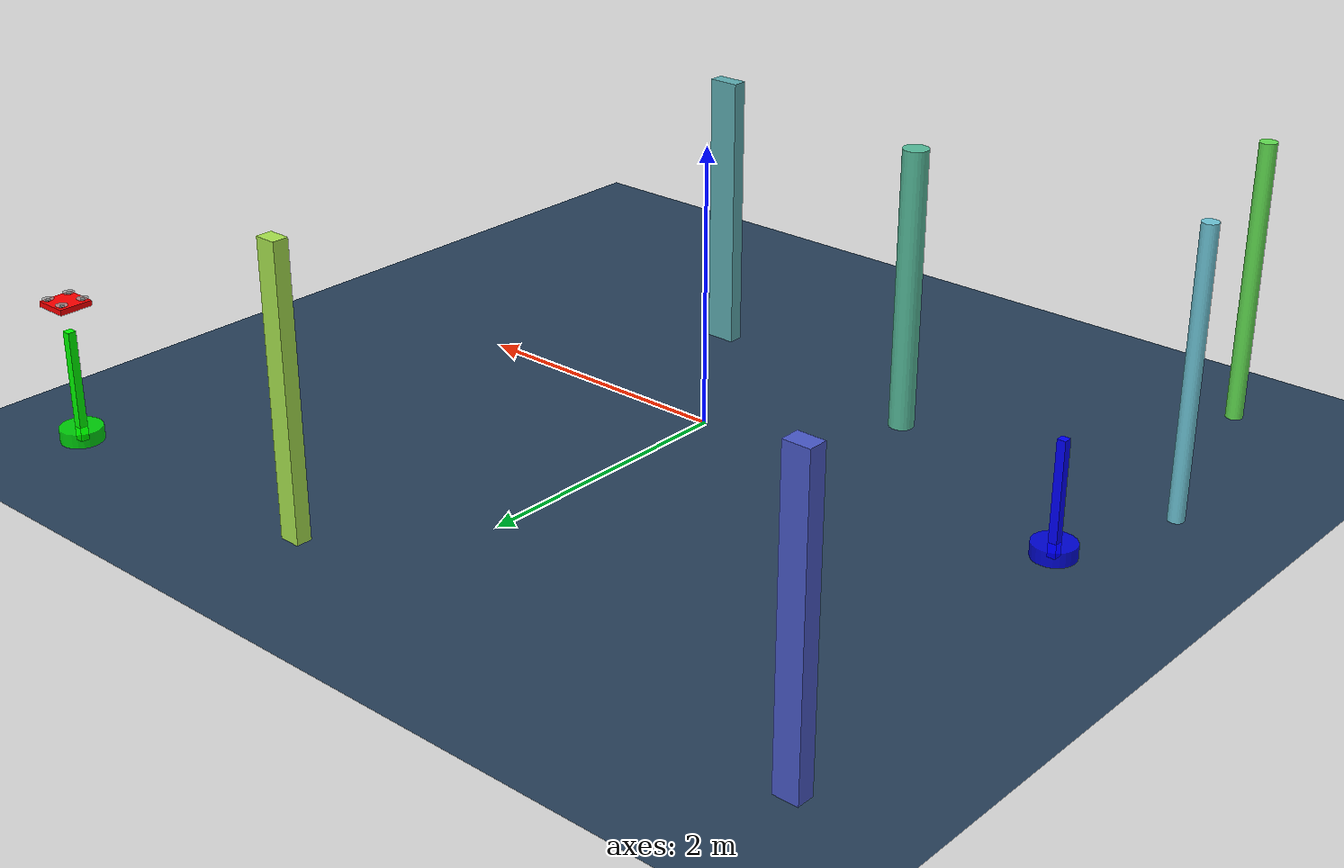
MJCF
<mujoco model="complex_uav_env">
  <compiler angle="degree" coordinate="local" inertiafromgeom="true"/>
  <option integrator="RK4" timestep="0.01"/>

  <visual>
    <headlight diffuse="0.6 0.6 0.6" ambient="0.3 0.3 0.3"/>
    <rgba haze="0.15 0.25 0.35 1"/>
    <global offwidth="2560" offheight="1440"/>
  </visual>

  <asset>
    <texture type="skybox" builtin="gradient" rgb1="0.3 0.5 0.7" rgb2="0 0 0" width="512" height="3072"/>
    <texture name="grid" type="2d" builtin="checker" rgb1="0.1 0.2 0.3" rgb2="0.2 0.3 0.4" width="512" height="512"/>
    <material name="grid" texture="grid" texrepeat="1 1" reflectance="0.2"/>
  </asset>

  <worldbody>
    <!-- Ground plane -->
    <geom name="ground" type="plane" size="4.0 4.0 0.1" material="grid"/>
    <light name="light1" pos="0 0 4" dir="0 0 -1" diffuse="1 1 1"/>

    <!-- Start position marker (green) -->
    <geom name="start_marker" type="cylinder" size="0.15 0.05" pos="3.0 3.0 0.05" rgba="0 1 0 0.8"/>
    <geom name="start_pole" type="box" size="0.03 0.03 0.4" pos="3.0 3.0 0.4" rgba="0 1 0 1"/>

    <!-- Goal position marker (blue) -->
    <geom name="goal_marker" type="cylinder" size="0.15 0.05" pos="-2.7994345064479846 0.005408309115027432 0.05" rgba="0 0 1 0.8"/>
    <geom name="goal_pole" type="box" size="0.03 0.03 0.4" pos="-2.7994345064479846 0.005408309115027432 0.4" rgba="0 0 1 1"/>

    <!-- UAV starting position -->
    <body name="chassis" pos="3.0 3.0 1.0">
      <joint type="free" name="root"/>
      <geom type="box" size="0.12 0.12 0.02" rgba="1.0 0.0 0.0 1.0" mass="0.8"/>

      <!-- Propeller arms and motors -->
      <geom type="box" size="0.08 0.01 0.005" pos="0 0 0.01" rgba="0.3 0.3 0.3 1"/>
      <geom type="box" size="0.01 0.08 0.005" pos="0 0 0.01" rgba="0.3 0.3 0.3 1"/>

      <!-- Motor visual geometry -->
      <geom type="cylinder" size="0.015 0.02" pos="0.08 0.08 0.015" rgba="0.2 0.2 0.2 1"/>
      <geom type="cylinder" size="0.015 0.02" pos="-0.08 0.08 0.015" rgba="0.2 0.2 0.2 1"/>
      <geom type="cylinder" size="0.015 0.02" pos="0.08 -0.08 0.015" rgba="0.2 0.2 0.2 1"/>
      <geom type="cylinder" size="0.015 0.02" pos="-0.08 -0.08 0.015" rgba="0.2 0.2 0.2 1"/>

      <!-- Propellers -->
      <geom type="cylinder" size="0.04 0.002" pos="0.08 0.08 0.035" rgba="0.7 0.7 0.7 0.8"/>
      <geom type="cylinder" size="0.04 0.002" pos="-0.08 0.08 0.035" rgba="0.7 0.7 0.7 0.8"/>
      <geom type="cylinder" size="0.04 0.002" pos="0.08 -0.08 0.035" rgba="0.7 0.7 0.7 0.8"/>
      <geom type="cylinder" size="0.04 0.002" pos="-0.08 -0.08 0.035" rgba="0.7 0.7 0.7 0.8"/>

      <!-- Sites for motor force application -->
      <site name="motor1" pos="0.08 0.08 0" size="0.01"/>
      <site name="motor2" pos="-0.08 0.08 0" size="0.01"/>
      <site name="motor3" pos="0.08 -0.08 0" size="0.01"/>
      <site name="motor4" pos="-0.08 -0.08 0" size="0.01"/>
    </body>
    <geom name="test_obs_0" type="cylinder" size="0.06104399859321689 1.0" pos="-2.6871244141568624 -2.5285094155580845 1.0" rgba="0.38458322379844667 0.8802240611142205 0.32249048952166215 1.0"/>
    <geom name="test_obs_1" type="cylinder" size="0.08991276796891023 1.0" pos="-1.0338009789233982 -0.8786458399307066 1.0" rgba="0.3382715913818342 0.7442268103556973 0.6146081143455892 1.0"/>
    <geom name="test_obs_2" type="box" size="0.08524665196449063 0.060513682390483575 1.0" pos="-3.1162106338100726 2.9807723593536295 1.0" rgba="0.28692982535819533 0.35088698092699333 0.7904902115764948 1.0"/>
    <geom name="test_obs_3" type="box" size="0.11023411221064981 0.052734804769341 1.0" pos="0.8679456476804924 -1.2524649585859395 1.0" rgba="0.36701307319405607 0.6819493314203269 0.6986132131180929 1.0"/>
    <geom name="test_obs_4" type="cylinder" size="0.056375355741929194 1.0" pos="-3.128074835701394 -0.909013270795463 1.0" rgba="0.43215982683959886 0.7843992097846813 0.855042309197439 1.0"/>
    <geom name="test_obs_5" type="box" size="0.07552858592511598 0.0554469742332493 1.0" pos="0.8242960785254089 2.9322100760434724 1.0" rgba="0.6660646618700503 0.8988787106531979 0.30750433288289625 1.0"/>
  </worldbody>

  <actuator>
    <motor name="m1" gear="0 0 1 0 0 0" site="motor1"/>
    <motor name="m2" gear="0 0 1 0 0 0" site="motor2"/>
    <motor name="m3" gear="0 0 1 0 0 0" site="motor3"/>
    <motor name="m4" gear="0 0 1 0 0 0" site="motor4"/>
  </actuator>
</mujoco>
